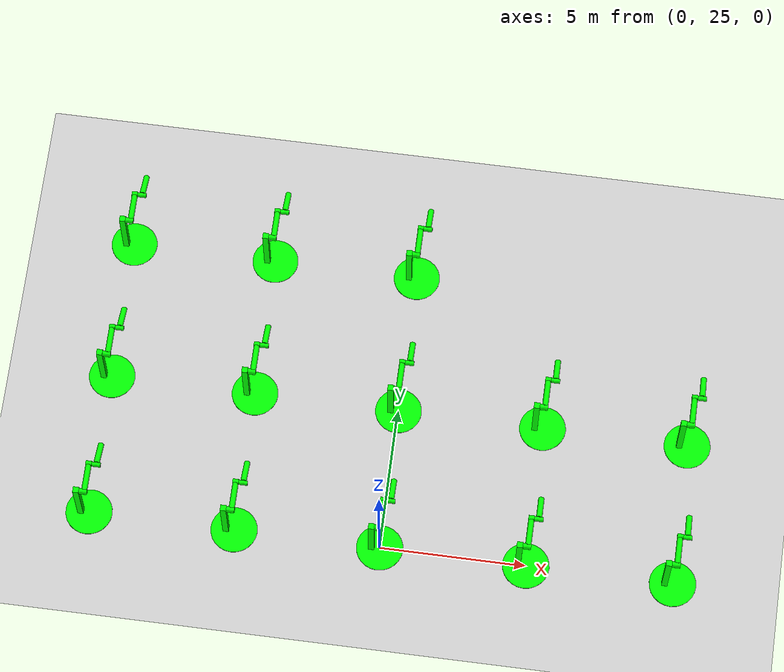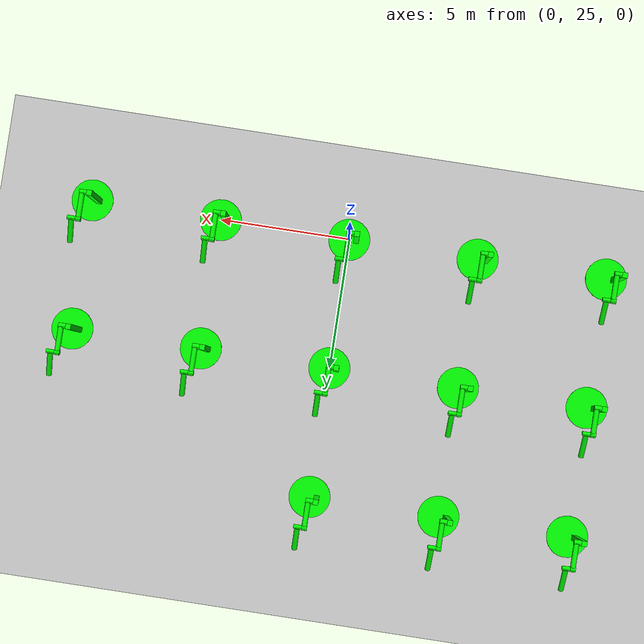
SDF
<sdf version="1.6">
 <world name="double_pendulums">
  <model name="ground_plane">
   <static>true</static>
   <link name="link">
    <collision name="collision">
     <geometry><plane><normal>0 0 1</normal><size>100 100</size></plane></geometry>
    </collision>
    <visual name="visual">
     <geometry><plane><normal>0 0 1</normal><size>100 100</size></plane></geometry>
     <material>
      <ambient>0.8 0.8 0.8 1</ambient>
      <diffuse>0.8 0.8 0.8 1</diffuse>
      <specular>0.8 0.8 0.8 1</specular>
     </material>
    </visual>
   </link>
  </model>
  <model name="dbl_pendulum_125">
   <pose>-10 25 0 0 0 0</pose>
   <link name="base">
    <inertial><mass>100</mass></inertial>
    <visual name="vis_plate_on_ground">
     <pose>0 0 0.01 0 0 0</pose>
     <geometry><cylinder><radius>0.8</radius><length>0.02</length></cylinder></geometry>
     <material><ambient>0 1 0 1</ambient><diffuse>0 1 0 1</diffuse><specular>0 1 0 1</specular></material>
    </visual>
    <visual name="vis_pole">
     <pose>-0.275 0 1.1 0 0 0</pose>
     <geometry><box><size>0.2 0.2 2.2</size></box></geometry>
     <material><ambient>0 1 0 1</ambient><diffuse>0 1 0 1</diffuse><specular>0 1 0 1</specular></material>
    </visual>
    <collision name="col_plate_on_ground">
     <pose>0 0 0.01 0 0 0</pose>
     <geometry><cylinder><radius>0.8</radius><length>0.02</length></cylinder></geometry>
    </collision>
    <collision name="col_pole">
     <pose>-0.275 0 1.1 0 0 0</pose>
     <geometry><box><size>0.2 0.2 2.2</size></box></geometry>
    </collision>
   </link>
   <link name="upper_link">
    <pose>0 0 2.1 -1.5708 0 0</pose>
    <inertial><pose>0 0 0.5 0 0 0</pose></inertial>
    <visual name="vis_upper_joint">
     <pose>-0.05 0 0 0 1.5708 0</pose>
     <geometry><cylinder><radius>0.1</radius><length>0.3</length></cylinder></geometry>
     <material><ambient>0 1 0 1</ambient><diffuse>0 1 0 1</diffuse><specular>0 1 0 1</specular></material>
    </visual>
    <visual name="vis_lower_joint">
     <pose>0 0 1.0 0 1.5708 0</pose>
     <geometry><cylinder><radius>0.1</radius><length>0.2</length></cylinder></geometry>
     <material><ambient>0 1 0 1</ambient><diffuse>0 1 0 1</diffuse><specular>0 1 0 1</specular></material>
    </visual>
    <visual name="vis_cylinder">
     <pose>0 0 0.5 0 0 0</pose>
     <geometry><cylinder><radius>0.1</radius><length>0.9</length></cylinder></geometry>
     <material><ambient>0 1 0 1</ambient><diffuse>0 1 0 1</diffuse><specular>0 1 0 1</specular></material>
    </visual>
    <collision name="col_upper_joint">
     <pose>-0.05 0 0 0 1.5708 0</pose>
     <geometry><cylinder><radius>0.1</radius><length>0.3</length></cylinder></geometry>
    </collision>
    <collision name="col_lower_joint">
     <pose>0 0 1.0 0 1.5708 0</pose>
     <geometry><cylinder><radius>0.1</radius><length>0.2</length></cylinder></geometry>
    </collision>
    <collision name="col_cylinder">
     <pose>0 0 0.5 0 0 0</pose>
     <geometry><cylinder><radius>0.1</radius><length>0.9</length></cylinder></geometry>
    </collision>
   </link>
   <link name="lower_link">
    <pose>0.25 1.0 2.1 -2 0 0</pose>
    <inertial><pose>0 0 0.5 0 0 0</pose></inertial>
    <visual name="vis_lower_joint">
     <pose>0 0 0 0 1.5708 0</pose>
     <geometry><cylinder><radius>0.08</radius><length>0.3</length></cylinder></geometry>
     <material><ambient>0 1 0 1</ambient><diffuse>0 1 0 1</diffuse><specular>0 1 0 1</specular></material>
    </visual>
    <visual name="vis_cylinder">
     <pose>0 0 0.5 0 0 0</pose>
     <geometry><cylinder><radius>0.1</radius><length>0.9</length></cylinder></geometry>
     <material><ambient>0 1 0 1</ambient><diffuse>0 1 0 1</diffuse><specular>0 1 0 1</specular></material>
    </visual>
    <collision name="col_lower_joint">
     <pose>0 0 0 0 1.5708 0</pose>
     <geometry><cylinder><radius>0.08</radius><length>0.3</length></cylinder></geometry>
    </collision>
    <collision name="col_cylinder">
     <pose>0 0 0.5 0 0 0</pose>
     <geometry><cylinder><radius>0.1</radius><length>0.9</length></cylinder></geometry>
    </collision>
   </link>
   <joint name="upper_joint" type="revolute">
    <parent>base</parent>
    <child>upper_link</child>
    <axis><xyz>1.0 0 0</xyz></axis>
   </joint>
   <joint name="lower_joint" type="revolute">
    <parent>upper_link</parent>
    <child>lower_link</child>
    <axis><xyz>1.0 0 0</xyz></axis>
   </joint>
  </model>
  <model name="dbl_pendulum_126">
   <pose>-5 25 0 0 0 0</pose>
   <link name="base">
    <inertial><mass>100</mass></inertial>
    <visual name="vis_plate_on_ground">
     <pose>0 0 0.01 0 0 0</pose>
     <geometry><cylinder><radius>0.8</radius><length>0.02</length></cylinder></geometry>
     <material><ambient>0 1 0 1</ambient><diffuse>0 1 0 1</diffuse><specular>0 1 0 1</specular></material>
    </visual>
    <visual name="vis_pole">
     <pose>-0.275 0 1.1 0 0 0</pose>
     <geometry><box><size>0.2 0.2 2.2</size></box></geometry>
     <material><ambient>0 1 0 1</ambient><diffuse>0 1 0 1</diffuse><specular>0 1 0 1</specular></material>
    </visual>
    <collision name="col_plate_on_ground">
     <pose>0 0 0.01 0 0 0</pose>
     <geometry><cylinder><radius>0.8</radius><length>0.02</length></cylinder></geometry>
    </collision>
    <collision name="col_pole">
     <pose>-0.275 0 1.1 0 0 0</pose>
     <geometry><box><size>0.2 0.2 2.2</size></box></geometry>
    </collision>
   </link>
   <link name="upper_link">
    <pose>0 0 2.1 -1.5708 0 0</pose>
    <inertial><pose>0 0 0.5 0 0 0</pose></inertial>
    <visual name="vis_upper_joint">
     <pose>-0.05 0 0 0 1.5708 0</pose>
     <geometry><cylinder><radius>0.1</radius><length>0.3</length></cylinder></geometry>
     <material><ambient>0 1 0 1</ambient><diffuse>0 1 0 1</diffuse><specular>0 1 0 1</specular></material>
    </visual>
    <visual name="vis_lower_joint">
     <pose>0 0 1.0 0 1.5708 0</pose>
     <geometry><cylinder><radius>0.1</radius><length>0.2</length></cylinder></geometry>
     <material><ambient>0 1 0 1</ambient><diffuse>0 1 0 1</diffuse><specular>0 1 0 1</specular></material>
    </visual>
    <visual name="vis_cylinder">
     <pose>0 0 0.5 0 0 0</pose>
     <geometry><cylinder><radius>0.1</radius><length>0.9</length></cylinder></geometry>
     <material><ambient>0 1 0 1</ambient><diffuse>0 1 0 1</diffuse><specular>0 1 0 1</specular></material>
    </visual>
    <collision name="col_upper_joint">
     <pose>-0.05 0 0 0 1.5708 0</pose>
     <geometry><cylinder><radius>0.1</radius><length>0.3</length></cylinder></geometry>
    </collision>
    <collision name="col_lower_joint">
     <pose>0 0 1.0 0 1.5708 0</pose>
     <geometry><cylinder><radius>0.1</radius><length>0.2</length></cylinder></geometry>
    </collision>
    <collision name="col_cylinder">
     <pose>0 0 0.5 0 0 0</pose>
     <geometry><cylinder><radius>0.1</radius><length>0.9</length></cylinder></geometry>
    </collision>
   </link>
   <link name="lower_link">
    <pose>0.25 1.0 2.1 -2 0 0</pose>
    <inertial><pose>0 0 0.5 0 0 0</pose></inertial>
    <visual name="vis_lower_joint">
     <pose>0 0 0 0 1.5708 0</pose>
     <geometry><cylinder><radius>0.08</radius><length>0.3</length></cylinder></geometry>
     <material><ambient>0 1 0 1</ambient><diffuse>0 1 0 1</diffuse><specular>0 1 0 1</specular></material>
    </visual>
    <visual name="vis_cylinder">
     <pose>0 0 0.5 0 0 0</pose>
     <geometry><cylinder><radius>0.1</radius><length>0.9</length></cylinder></geometry>
     <material><ambient>0 1 0 1</ambient><diffuse>0 1 0 1</diffuse><specular>0 1 0 1</specular></material>
    </visual>
    <collision name="col_lower_joint">
     <pose>0 0 0 0 1.5708 0</pose>
     <geometry><cylinder><radius>0.08</radius><length>0.3</length></cylinder></geometry>
    </collision>
    <collision name="col_cylinder">
     <pose>0 0 0.5 0 0 0</pose>
     <geometry><cylinder><radius>0.1</radius><length>0.9</length></cylinder></geometry>
    </collision>
   </link>
   <joint name="upper_joint" type="revolute">
    <parent>base</parent>
    <child>upper_link</child>
    <axis><xyz>1.0 0 0</xyz></axis>
   </joint>
   <joint name="lower_joint" type="revolute">
    <parent>upper_link</parent>
    <child>lower_link</child>
    <axis><xyz>1.0 0 0</xyz></axis>
   </joint>
  </model>
  <model name="dbl_pendulum_127">
   <pose>0 25 0 0 0 0</pose>
   <link name="base">
    <inertial><mass>100</mass></inertial>
    <visual name="vis_plate_on_ground">
     <pose>0 0 0.01 0 0 0</pose>
     <geometry><cylinder><radius>0.8</radius><length>0.02</length></cylinder></geometry>
     <material><ambient>0 1 0 1</ambient><diffuse>0 1 0 1</diffuse><specular>0 1 0 1</specular></material>
    </visual>
    <visual name="vis_pole">
     <pose>-0.275 0 1.1 0 0 0</pose>
     <geometry><box><size>0.2 0.2 2.2</size></box></geometry>
     <material><ambient>0 1 0 1</ambient><diffuse>0 1 0 1</diffuse><specular>0 1 0 1</specular></material>
    </visual>
    <collision name="col_plate_on_ground">
     <pose>0 0 0.01 0 0 0</pose>
     <geometry><cylinder><radius>0.8</radius><length>0.02</length></cylinder></geometry>
    </collision>
    <collision name="col_pole">
     <pose>-0.275 0 1.1 0 0 0</pose>
     <geometry><box><size>0.2 0.2 2.2</size></box></geometry>
    </collision>
   </link>
   <link name="upper_link">
    <pose>0 0 2.1 -1.5708 0 0</pose>
    <inertial><pose>0 0 0.5 0 0 0</pose></inertial>
    <visual name="vis_upper_joint">
     <pose>-0.05 0 0 0 1.5708 0</pose>
     <geometry><cylinder><radius>0.1</radius><length>0.3</length></cylinder></geometry>
     <material><ambient>0 1 0 1</ambient><diffuse>0 1 0 1</diffuse><specular>0 1 0 1</specular></material>
    </visual>
    <visual name="vis_lower_joint">
     <pose>0 0 1.0 0 1.5708 0</pose>
     <geometry><cylinder><radius>0.1</radius><length>0.2</length></cylinder></geometry>
     <material><ambient>0 1 0 1</ambient><diffuse>0 1 0 1</diffuse><specular>0 1 0 1</specular></material>
    </visual>
    <visual name="vis_cylinder">
     <pose>0 0 0.5 0 0 0</pose>
     <geometry><cylinder><radius>0.1</radius><length>0.9</length></cylinder></geometry>
     <material><ambient>0 1 0 1</ambient><diffuse>0 1 0 1</diffuse><specular>0 1 0 1</specular></material>
    </visual>
    <collision name="col_upper_joint">
     <pose>-0.05 0 0 0 1.5708 0</pose>
     <geometry><cylinder><radius>0.1</radius><length>0.3</length></cylinder></geometry>
    </collision>
    <collision name="col_lower_joint">
     <pose>0 0 1.0 0 1.5708 0</pose>
     <geometry><cylinder><radius>0.1</radius><length>0.2</length></cylinder></geometry>
    </collision>
    <collision name="col_cylinder">
     <pose>0 0 0.5 0 0 0</pose>
     <geometry><cylinder><radius>0.1</radius><length>0.9</length></cylinder></geometry>
    </collision>
   </link>
   <link name="lower_link">
    <pose>0.25 1.0 2.1 -2 0 0</pose>
    <inertial><pose>0 0 0.5 0 0 0</pose></inertial>
    <visual name="vis_lower_joint">
     <pose>0 0 0 0 1.5708 0</pose>
     <geometry><cylinder><radius>0.08</radius><length>0.3</length></cylinder></geometry>
     <material><ambient>0 1 0 1</ambient><diffuse>0 1 0 1</diffuse><specular>0 1 0 1</specular></material>
    </visual>
    <visual name="vis_cylinder">
     <pose>0 0 0.5 0 0 0</pose>
     <geometry><cylinder><radius>0.1</radius><length>0.9</length></cylinder></geometry>
     <material><ambient>0 1 0 1</ambient><diffuse>0 1 0 1</diffuse><specular>0 1 0 1</specular></material>
    </visual>
    <collision name="col_lower_joint">
     <pose>0 0 0 0 1.5708 0</pose>
     <geometry><cylinder><radius>0.08</radius><length>0.3</length></cylinder></geometry>
    </collision>
    <collision name="col_cylinder">
     <pose>0 0 0.5 0 0 0</pose>
     <geometry><cylinder><radius>0.1</radius><length>0.9</length></cylinder></geometry>
    </collision>
   </link>
   <joint name="upper_joint" type="revolute">
    <parent>base</parent>
    <child>upper_link</child>
    <axis><xyz>1.0 0 0</xyz></axis>
   </joint>
   <joint name="lower_joint" type="revolute">
    <parent>upper_link</parent>
    <child>lower_link</child>
    <axis><xyz>1.0 0 0</xyz></axis>
   </joint>
  </model>
  <model name="dbl_pendulum_128">
   <pose>5 25 0 0 0 0</pose>
   <link name="base">
    <inertial><mass>100</mass></inertial>
    <visual name="vis_plate_on_ground">
     <pose>0 0 0.01 0 0 0</pose>
     <geometry><cylinder><radius>0.8</radius><length>0.02</length></cylinder></geometry>
     <material><ambient>0 1 0 1</ambient><diffuse>0 1 0 1</diffuse><specular>0 1 0 1</specular></material>
    </visual>
    <visual name="vis_pole">
     <pose>-0.275 0 1.1 0 0 0</pose>
     <geometry><box><size>0.2 0.2 2.2</size></box></geometry>
     <material><ambient>0 1 0 1</ambient><diffuse>0 1 0 1</diffuse><specular>0 1 0 1</specular></material>
    </visual>
    <collision name="col_plate_on_ground">
     <pose>0 0 0.01 0 0 0</pose>
     <geometry><cylinder><radius>0.8</radius><length>0.02</length></cylinder></geometry>
    </collision>
    <collision name="col_pole">
     <pose>-0.275 0 1.1 0 0 0</pose>
     <geometry><box><size>0.2 0.2 2.2</size></box></geometry>
    </collision>
   </link>
   <link name="upper_link">
    <pose>0 0 2.1 -1.5708 0 0</pose>
    <inertial><pose>0 0 0.5 0 0 0</pose></inertial>
    <visual name="vis_upper_joint">
     <pose>-0.05 0 0 0 1.5708 0</pose>
     <geometry><cylinder><radius>0.1</radius><length>0.3</length></cylinder></geometry>
     <material><ambient>0 1 0 1</ambient><diffuse>0 1 0 1</diffuse><specular>0 1 0 1</specular></material>
    </visual>
    <visual name="vis_lower_joint">
     <pose>0 0 1.0 0 1.5708 0</pose>
     <geometry><cylinder><radius>0.1</radius><length>0.2</length></cylinder></geometry>
     <material><ambient>0 1 0 1</ambient><diffuse>0 1 0 1</diffuse><specular>0 1 0 1</specular></material>
    </visual>
    <visual name="vis_cylinder">
     <pose>0 0 0.5 0 0 0</pose>
     <geometry><cylinder><radius>0.1</radius><length>0.9</length></cylinder></geometry>
     <material><ambient>0 1 0 1</ambient><diffuse>0 1 0 1</diffuse><specular>0 1 0 1</specular></material>
    </visual>
    <collision name="col_upper_joint">
     <pose>-0.05 0 0 0 1.5708 0</pose>
     <geometry><cylinder><radius>0.1</radius><length>0.3</length></cylinder></geometry>
    </collision>
    <collision name="col_lower_joint">
     <pose>0 0 1.0 0 1.5708 0</pose>
     <geometry><cylinder><radius>0.1</radius><length>0.2</length></cylinder></geometry>
    </collision>
    <collision name="col_cylinder">
     <pose>0 0 0.5 0 0 0</pose>
     <geometry><cylinder><radius>0.1</radius><length>0.9</length></cylinder></geometry>
    </collision>
   </link>
   <link name="lower_link">
    <pose>0.25 1.0 2.1 -2 0 0</pose>
    <inertial><pose>0 0 0.5 0 0 0</pose></inertial>
    <visual name="vis_lower_joint">
     <pose>0 0 0 0 1.5708 0</pose>
     <geometry><cylinder><radius>0.08</radius><length>0.3</length></cylinder></geometry>
     <material><ambient>0 1 0 1</ambient><diffuse>0 1 0 1</diffuse><specular>0 1 0 1</specular></material>
    </visual>
    <visual name="vis_cylinder">
     <pose>0 0 0.5 0 0 0</pose>
     <geometry><cylinder><radius>0.1</radius><length>0.9</length></cylinder></geometry>
     <material><ambient>0 1 0 1</ambient><diffuse>0 1 0 1</diffuse><specular>0 1 0 1</specular></material>
    </visual>
    <collision name="col_lower_joint">
     <pose>0 0 0 0 1.5708 0</pose>
     <geometry><cylinder><radius>0.08</radius><length>0.3</length></cylinder></geometry>
    </collision>
    <collision name="col_cylinder">
     <pose>0 0 0.5 0 0 0</pose>
     <geometry><cylinder><radius>0.1</radius><length>0.9</length></cylinder></geometry>
    </collision>
   </link>
   <joint name="upper_joint" type="revolute">
    <parent>base</parent>
    <child>upper_link</child>
    <axis><xyz>1.0 0 0</xyz></axis>
   </joint>
   <joint name="lower_joint" type="revolute">
    <parent>upper_link</parent>
    <child>lower_link</child>
    <axis><xyz>1.0 0 0</xyz></axis>
   </joint>
  </model>
  <model name="dbl_pendulum_129">
   <pose>10 25 0 0 0 0</pose>
   <link name="base">
    <inertial><mass>100</mass></inertial>
    <visual name="vis_plate_on_ground">
     <pose>0 0 0.01 0 0 0</pose>
     <geometry><cylinder><radius>0.8</radius><length>0.02</length></cylinder></geometry>
     <material><ambient>0 1 0 1</ambient><diffuse>0 1 0 1</diffuse><specular>0 1 0 1</specular></material>
    </visual>
    <visual name="vis_pole">
     <pose>-0.275 0 1.1 0 0 0</pose>
     <geometry><box><size>0.2 0.2 2.2</size></box></geometry>
     <material><ambient>0 1 0 1</ambient><diffuse>0 1 0 1</diffuse><specular>0 1 0 1</specular></material>
    </visual>
    <collision name="col_plate_on_ground">
     <pose>0 0 0.01 0 0 0</pose>
     <geometry><cylinder><radius>0.8</radius><length>0.02</length></cylinder></geometry>
    </collision>
    <collision name="col_pole">
     <pose>-0.275 0 1.1 0 0 0</pose>
     <geometry><box><size>0.2 0.2 2.2</size></box></geometry>
    </collision>
   </link>
   <link name="upper_link">
    <pose>0 0 2.1 -1.5708 0 0</pose>
    <inertial><pose>0 0 0.5 0 0 0</pose></inertial>
    <visual name="vis_upper_joint">
     <pose>-0.05 0 0 0 1.5708 0</pose>
     <geometry><cylinder><radius>0.1</radius><length>0.3</length></cylinder></geometry>
     <material><ambient>0 1 0 1</ambient><diffuse>0 1 0 1</diffuse><specular>0 1 0 1</specular></material>
    </visual>
    <visual name="vis_lower_joint">
     <pose>0 0 1.0 0 1.5708 0</pose>
     <geometry><cylinder><radius>0.1</radius><length>0.2</length></cylinder></geometry>
     <material><ambient>0 1 0 1</ambient><diffuse>0 1 0 1</diffuse><specular>0 1 0 1</specular></material>
    </visual>
    <visual name="vis_cylinder">
     <pose>0 0 0.5 0 0 0</pose>
     <geometry><cylinder><radius>0.1</radius><length>0.9</length></cylinder></geometry>
     <material><ambient>0 1 0 1</ambient><diffuse>0 1 0 1</diffuse><specular>0 1 0 1</specular></material>
    </visual>
    <collision name="col_upper_joint">
     <pose>-0.05 0 0 0 1.5708 0</pose>
     <geometry><cylinder><radius>0.1</radius><length>0.3</length></cylinder></geometry>
    </collision>
    <collision name="col_lower_joint">
     <pose>0 0 1.0 0 1.5708 0</pose>
     <geometry><cylinder><radius>0.1</radius><length>0.2</length></cylinder></geometry>
    </collision>
    <collision name="col_cylinder">
     <pose>0 0 0.5 0 0 0</pose>
     <geometry><cylinder><radius>0.1</radius><length>0.9</length></cylinder></geometry>
    </collision>
   </link>
   <link name="lower_link">
    <pose>0.25 1.0 2.1 -2 0 0</pose>
    <inertial><pose>0 0 0.5 0 0 0</pose></inertial>
    <visual name="vis_lower_joint">
     <pose>0 0 0 0 1.5708 0</pose>
     <geometry><cylinder><radius>0.08</radius><length>0.3</length></cylinder></geometry>
     <material><ambient>0 1 0 1</ambient><diffuse>0 1 0 1</diffuse><specular>0 1 0 1</specular></material>
    </visual>
    <visual name="vis_cylinder">
     <pose>0 0 0.5 0 0 0</pose>
     <geometry><cylinder><radius>0.1</radius><length>0.9</length></cylinder></geometry>
     <material><ambient>0 1 0 1</ambient><diffuse>0 1 0 1</diffuse><specular>0 1 0 1</specular></material>
    </visual>
    <collision name="col_lower_joint">
     <pose>0 0 0 0 1.5708 0</pose>
     <geometry><cylinder><radius>0.08</radius><length>0.3</length></cylinder></geometry>
    </collision>
    <collision name="col_cylinder">
     <pose>0 0 0.5 0 0 0</pose>
     <geometry><cylinder><radius>0.1</radius><length>0.9</length></cylinder></geometry>
    </collision>
   </link>
   <joint name="upper_joint" type="revolute">
    <parent>base</parent>
    <child>upper_link</child>
    <axis><xyz>1.0 0 0</xyz></axis>
   </joint>
   <joint name="lower_joint" type="revolute">
    <parent>upper_link</parent>
    <child>lower_link</child>
    <axis><xyz>1.0 0 0</xyz></axis>
   </joint>
  </model>
  <model name="dbl_pendulum_150">
   <pose>-10 30 0 0 0 0</pose>
   <link name="base">
    <inertial><mass>100</mass></inertial>
    <visual name="vis_plate_on_ground">
     <pose>0 0 0.01 0 0 0</pose>
     <geometry><cylinder><radius>0.8</radius><length>0.02</length></cylinder></geometry>
     <material><ambient>0 1 0 1</ambient><diffuse>0 1 0 1</diffuse><specular>0 1 0 1</specular></material>
    </visual>
    <visual name="vis_pole">
     <pose>-0.275 0 1.1 0 0 0</pose>
     <geometry><box><size>0.2 0.2 2.2</size></box></geometry>
     <material><ambient>0 1 0 1</ambient><diffuse>0 1 0 1</diffuse><specular>0 1 0 1</specular></material>
    </visual>
    <collision name="col_plate_on_ground">
     <pose>0 0 0.01 0 0 0</pose>
     <geometry><cylinder><radius>0.8</radius><length>0.02</length></cylinder></geometry>
    </collision>
    <collision name="col_pole">
     <pose>-0.275 0 1.1 0 0 0</pose>
     <geometry><box><size>0.2 0.2 2.2</size></box></geometry>
    </collision>
   </link>
   <link name="upper_link">
    <pose>0 0 2.1 -1.5708 0 0</pose>
    <inertial><pose>0 0 0.5 0 0 0</pose></inertial>
    <visual name="vis_upper_joint">
     <pose>-0.05 0 0 0 1.5708 0</pose>
     <geometry><cylinder><radius>0.1</radius><length>0.3</length></cylinder></geometry>
     <material><ambient>0 1 0 1</ambient><diffuse>0 1 0 1</diffuse><specular>0 1 0 1</specular></material>
    </visual>
    <visual name="vis_lower_joint">
     <pose>0 0 1.0 0 1.5708 0</pose>
     <geometry><cylinder><radius>0.1</radius><length>0.2</length></cylinder></geometry>
     <material><ambient>0 1 0 1</ambient><diffuse>0 1 0 1</diffuse><specular>0 1 0 1</specular></material>
    </visual>
    <visual name="vis_cylinder">
     <pose>0 0 0.5 0 0 0</pose>
     <geometry><cylinder><radius>0.1</radius><length>0.9</length></cylinder></geometry>
     <material><ambient>0 1 0 1</ambient><diffuse>0 1 0 1</diffuse><specular>0 1 0 1</specular></material>
    </visual>
    <collision name="col_upper_joint">
     <pose>-0.05 0 0 0 1.5708 0</pose>
     <geometry><cylinder><radius>0.1</radius><length>0.3</length></cylinder></geometry>
    </collision>
    <collision name="col_lower_joint">
     <pose>0 0 1.0 0 1.5708 0</pose>
     <geometry><cylinder><radius>0.1</radius><length>0.2</length></cylinder></geometry>
    </collision>
    <collision name="col_cylinder">
     <pose>0 0 0.5 0 0 0</pose>
     <geometry><cylinder><radius>0.1</radius><length>0.9</length></cylinder></geometry>
    </collision>
   </link>
   <link name="lower_link">
    <pose>0.25 1.0 2.1 -2 0 0</pose>
    <inertial><pose>0 0 0.5 0 0 0</pose></inertial>
    <visual name="vis_lower_joint">
     <pose>0 0 0 0 1.5708 0</pose>
     <geometry><cylinder><radius>0.08</radius><length>0.3</length></cylinder></geometry>
     <material><ambient>0 1 0 1</ambient><diffuse>0 1 0 1</diffuse><specular>0 1 0 1</specular></material>
    </visual>
    <visual name="vis_cylinder">
     <pose>0 0 0.5 0 0 0</pose>
     <geometry><cylinder><radius>0.1</radius><length>0.9</length></cylinder></geometry>
     <material><ambient>0 1 0 1</ambient><diffuse>0 1 0 1</diffuse><specular>0 1 0 1</specular></material>
    </visual>
    <collision name="col_lower_joint">
     <pose>0 0 0 0 1.5708 0</pose>
     <geometry><cylinder><radius>0.08</radius><length>0.3</length></cylinder></geometry>
    </collision>
    <collision name="col_cylinder">
     <pose>0 0 0.5 0 0 0</pose>
     <geometry><cylinder><radius>0.1</radius><length>0.9</length></cylinder></geometry>
    </collision>
   </link>
   <joint name="upper_joint" type="revolute">
    <parent>base</parent>
    <child>upper_link</child>
    <axis><xyz>1.0 0 0</xyz></axis>
   </joint>
   <joint name="lower_joint" type="revolute">
    <parent>upper_link</parent>
    <child>lower_link</child>
    <axis><xyz>1.0 0 0</xyz></axis>
   </joint>
  </model>
  <model name="dbl_pendulum_151">
   <pose>-5 30 0 0 0 0</pose>
   <link name="base">
    <inertial><mass>100</mass></inertial>
    <visual name="vis_plate_on_ground">
     <pose>0 0 0.01 0 0 0</pose>
     <geometry><cylinder><radius>0.8</radius><length>0.02</length></cylinder></geometry>
     <material><ambient>0 1 0 1</ambient><diffuse>0 1 0 1</diffuse><specular>0 1 0 1</specular></material>
    </visual>
    <visual name="vis_pole">
     <pose>-0.275 0 1.1 0 0 0</pose>
     <geometry><box><size>0.2 0.2 2.2</size></box></geometry>
     <material><ambient>0 1 0 1</ambient><diffuse>0 1 0 1</diffuse><specular>0 1 0 1</specular></material>
    </visual>
    <collision name="col_plate_on_ground">
     <pose>0 0 0.01 0 0 0</pose>
     <geometry><cylinder><radius>0.8</radius><length>0.02</length></cylinder></geometry>
    </collision>
    <collision name="col_pole">
     <pose>-0.275 0 1.1 0 0 0</pose>
     <geometry><box><size>0.2 0.2 2.2</size></box></geometry>
    </collision>
   </link>
   <link name="upper_link">
    <pose>0 0 2.1 -1.5708 0 0</pose>
    <inertial><pose>0 0 0.5 0 0 0</pose></inertial>
    <visual name="vis_upper_joint">
     <pose>-0.05 0 0 0 1.5708 0</pose>
     <geometry><cylinder><radius>0.1</radius><length>0.3</length></cylinder></geometry>
     <material><ambient>0 1 0 1</ambient><diffuse>0 1 0 1</diffuse><specular>0 1 0 1</specular></material>
    </visual>
    <visual name="vis_lower_joint">
     <pose>0 0 1.0 0 1.5708 0</pose>
     <geometry><cylinder><radius>0.1</radius><length>0.2</length></cylinder></geometry>
     <material><ambient>0 1 0 1</ambient><diffuse>0 1 0 1</diffuse><specular>0 1 0 1</specular></material>
    </visual>
    <visual name="vis_cylinder">
     <pose>0 0 0.5 0 0 0</pose>
     <geometry><cylinder><radius>0.1</radius><length>0.9</length></cylinder></geometry>
     <material><ambient>0 1 0 1</ambient><diffuse>0 1 0 1</diffuse><specular>0 1 0 1</specular></material>
    </visual>
    <collision name="col_upper_joint">
     <pose>-0.05 0 0 0 1.5708 0</pose>
     <geometry><cylinder><radius>0.1</radius><length>0.3</length></cylinder></geometry>
    </collision>
    <collision name="col_lower_joint">
     <pose>0 0 1.0 0 1.5708 0</pose>
     <geometry><cylinder><radius>0.1</radius><length>0.2</length></cylinder></geometry>
    </collision>
    <collision name="col_cylinder">
     <pose>0 0 0.5 0 0 0</pose>
     <geometry><cylinder><radius>0.1</radius><length>0.9</length></cylinder></geometry>
    </collision>
   </link>
   <link name="lower_link">
    <pose>0.25 1.0 2.1 -2 0 0</pose>
    <inertial><pose>0 0 0.5 0 0 0</pose></inertial>
    <visual name="vis_lower_joint">
     <pose>0 0 0 0 1.5708 0</pose>
     <geometry><cylinder><radius>0.08</radius><length>0.3</length></cylinder></geometry>
     <material><ambient>0 1 0 1</ambient><diffuse>0 1 0 1</diffuse><specular>0 1 0 1</specular></material>
    </visual>
    <visual name="vis_cylinder">
     <pose>0 0 0.5 0 0 0</pose>
     <geometry><cylinder><radius>0.1</radius><length>0.9</length></cylinder></geometry>
     <material><ambient>0 1 0 1</ambient><diffuse>0 1 0 1</diffuse><specular>0 1 0 1</specular></material>
    </visual>
    <collision name="col_lower_joint">
     <pose>0 0 0 0 1.5708 0</pose>
     <geometry><cylinder><radius>0.08</radius><length>0.3</length></cylinder></geometry>
    </collision>
    <collision name="col_cylinder">
     <pose>0 0 0.5 0 0 0</pose>
     <geometry><cylinder><radius>0.1</radius><length>0.9</length></cylinder></geometry>
    </collision>
   </link>
   <joint name="upper_joint" type="revolute">
    <parent>base</parent>
    <child>upper_link</child>
    <axis><xyz>1.0 0 0</xyz></axis>
   </joint>
   <joint name="lower_joint" type="revolute">
    <parent>upper_link</parent>
    <child>lower_link</child>
    <axis><xyz>1.0 0 0</xyz></axis>
   </joint>
  </model>
  <model name="dbl_pendulum_152">
   <pose>0 30 0 0 0 0</pose>
   <link name="base">
    <inertial><mass>100</mass></inertial>
    <visual name="vis_plate_on_ground">
     <pose>0 0 0.01 0 0 0</pose>
     <geometry><cylinder><radius>0.8</radius><length>0.02</length></cylinder></geometry>
     <material><ambient>0 1 0 1</ambient><diffuse>0 1 0 1</diffuse><specular>0 1 0 1</specular></material>
    </visual>
    <visual name="vis_pole">
     <pose>-0.275 0 1.1 0 0 0</pose>
     <geometry><box><size>0.2 0.2 2.2</size></box></geometry>
     <material><ambient>0 1 0 1</ambient><diffuse>0 1 0 1</diffuse><specular>0 1 0 1</specular></material>
    </visual>
    <collision name="col_plate_on_ground">
     <pose>0 0 0.01 0 0 0</pose>
     <geometry><cylinder><radius>0.8</radius><length>0.02</length></cylinder></geometry>
    </collision>
    <collision name="col_pole">
     <pose>-0.275 0 1.1 0 0 0</pose>
     <geometry><box><size>0.2 0.2 2.2</size></box></geometry>
    </collision>
   </link>
   <link name="upper_link">
    <pose>0 0 2.1 -1.5708 0 0</pose>
    <inertial><pose>0 0 0.5 0 0 0</pose></inertial>
    <visual name="vis_upper_joint">
     <pose>-0.05 0 0 0 1.5708 0</pose>
     <geometry><cylinder><radius>0.1</radius><length>0.3</length></cylinder></geometry>
     <material><ambient>0 1 0 1</ambient><diffuse>0 1 0 1</diffuse><specular>0 1 0 1</specular></material>
    </visual>
    <visual name="vis_lower_joint">
     <pose>0 0 1.0 0 1.5708 0</pose>
     <geometry><cylinder><radius>0.1</radius><length>0.2</length></cylinder></geometry>
     <material><ambient>0 1 0 1</ambient><diffuse>0 1 0 1</diffuse><specular>0 1 0 1</specular></material>
    </visual>
    <visual name="vis_cylinder">
     <pose>0 0 0.5 0 0 0</pose>
     <geometry><cylinder><radius>0.1</radius><length>0.9</length></cylinder></geometry>
     <material><ambient>0 1 0 1</ambient><diffuse>0 1 0 1</diffuse><specular>0 1 0 1</specular></material>
    </visual>
    <collision name="col_upper_joint">
     <pose>-0.05 0 0 0 1.5708 0</pose>
     <geometry><cylinder><radius>0.1</radius><length>0.3</length></cylinder></geometry>
    </collision>
    <collision name="col_lower_joint">
     <pose>0 0 1.0 0 1.5708 0</pose>
     <geometry><cylinder><radius>0.1</radius><length>0.2</length></cylinder></geometry>
    </collision>
    <collision name="col_cylinder">
     <pose>0 0 0.5 0 0 0</pose>
     <geometry><cylinder><radius>0.1</radius><length>0.9</length></cylinder></geometry>
    </collision>
   </link>
   <link name="lower_link">
    <pose>0.25 1.0 2.1 -2 0 0</pose>
    <inertial><pose>0 0 0.5 0 0 0</pose></inertial>
    <visual name="vis_lower_joint">
     <pose>0 0 0 0 1.5708 0</pose>
     <geometry><cylinder><radius>0.08</radius><length>0.3</length></cylinder></geometry>
     <material><ambient>0 1 0 1</ambient><diffuse>0 1 0 1</diffuse><specular>0 1 0 1</specular></material>
    </visual>
    <visual name="vis_cylinder">
     <pose>0 0 0.5 0 0 0</pose>
     <geometry><cylinder><radius>0.1</radius><length>0.9</length></cylinder></geometry>
     <material><ambient>0 1 0 1</ambient><diffuse>0 1 0 1</diffuse><specular>0 1 0 1</specular></material>
    </visual>
    <collision name="col_lower_joint">
     <pose>0 0 0 0 1.5708 0</pose>
     <geometry><cylinder><radius>0.08</radius><length>0.3</length></cylinder></geometry>
    </collision>
    <collision name="col_cylinder">
     <pose>0 0 0.5 0 0 0</pose>
     <geometry><cylinder><radius>0.1</radius><length>0.9</length></cylinder></geometry>
    </collision>
   </link>
   <joint name="upper_joint" type="revolute">
    <parent>base</parent>
    <child>upper_link</child>
    <axis><xyz>1.0 0 0</xyz></axis>
   </joint>
   <joint name="lower_joint" type="revolute">
    <parent>upper_link</parent>
    <child>lower_link</child>
    <axis><xyz>1.0 0 0</xyz></axis>
   </joint>
  </model>
  <model name="dbl_pendulum_153">
   <pose>5 30 0 0 0 0</pose>
   <link name="base">
    <inertial><mass>100</mass></inertial>
    <visual name="vis_plate_on_ground">
     <pose>0 0 0.01 0 0 0</pose>
     <geometry><cylinder><radius>0.8</radius><length>0.02</length></cylinder></geometry>
     <material><ambient>0 1 0 1</ambient><diffuse>0 1 0 1</diffuse><specular>0 1 0 1</specular></material>
    </visual>
    <visual name="vis_pole">
     <pose>-0.275 0 1.1 0 0 0</pose>
     <geometry><box><size>0.2 0.2 2.2</size></box></geometry>
     <material><ambient>0 1 0 1</ambient><diffuse>0 1 0 1</diffuse><specular>0 1 0 1</specular></material>
    </visual>
    <collision name="col_plate_on_ground">
     <pose>0 0 0.01 0 0 0</pose>
     <geometry><cylinder><radius>0.8</radius><length>0.02</length></cylinder></geometry>
    </collision>
    <collision name="col_pole">
     <pose>-0.275 0 1.1 0 0 0</pose>
     <geometry><box><size>0.2 0.2 2.2</size></box></geometry>
    </collision>
   </link>
   <link name="upper_link">
    <pose>0 0 2.1 -1.5708 0 0</pose>
    <inertial><pose>0 0 0.5 0 0 0</pose></inertial>
    <visual name="vis_upper_joint">
     <pose>-0.05 0 0 0 1.5708 0</pose>
     <geometry><cylinder><radius>0.1</radius><length>0.3</length></cylinder></geometry>
     <material><ambient>0 1 0 1</ambient><diffuse>0 1 0 1</diffuse><specular>0 1 0 1</specular></material>
    </visual>
    <visual name="vis_lower_joint">
     <pose>0 0 1.0 0 1.5708 0</pose>
     <geometry><cylinder><radius>0.1</radius><length>0.2</length></cylinder></geometry>
     <material><ambient>0 1 0 1</ambient><diffuse>0 1 0 1</diffuse><specular>0 1 0 1</specular></material>
    </visual>
    <visual name="vis_cylinder">
     <pose>0 0 0.5 0 0 0</pose>
     <geometry><cylinder><radius>0.1</radius><length>0.9</length></cylinder></geometry>
     <material><ambient>0 1 0 1</ambient><diffuse>0 1 0 1</diffuse><specular>0 1 0 1</specular></material>
    </visual>
    <collision name="col_upper_joint">
     <pose>-0.05 0 0 0 1.5708 0</pose>
     <geometry><cylinder><radius>0.1</radius><length>0.3</length></cylinder></geometry>
    </collision>
    <collision name="col_lower_joint">
     <pose>0 0 1.0 0 1.5708 0</pose>
     <geometry><cylinder><radius>0.1</radius><length>0.2</length></cylinder></geometry>
    </collision>
    <collision name="col_cylinder">
     <pose>0 0 0.5 0 0 0</pose>
     <geometry><cylinder><radius>0.1</radius><length>0.9</length></cylinder></geometry>
    </collision>
   </link>
   <link name="lower_link">
    <pose>0.25 1.0 2.1 -2 0 0</pose>
    <inertial><pose>0 0 0.5 0 0 0</pose></inertial>
    <visual name="vis_lower_joint">
     <pose>0 0 0 0 1.5708 0</pose>
     <geometry><cylinder><radius>0.08</radius><length>0.3</length></cylinder></geometry>
     <material><ambient>0 1 0 1</ambient><diffuse>0 1 0 1</diffuse><specular>0 1 0 1</specular></material>
    </visual>
    <visual name="vis_cylinder">
     <pose>0 0 0.5 0 0 0</pose>
     <geometry><cylinder><radius>0.1</radius><length>0.9</length></cylinder></geometry>
     <material><ambient>0 1 0 1</ambient><diffuse>0 1 0 1</diffuse><specular>0 1 0 1</specular></material>
    </visual>
    <collision name="col_lower_joint">
     <pose>0 0 0 0 1.5708 0</pose>
     <geometry><cylinder><radius>0.08</radius><length>0.3</length></cylinder></geometry>
    </collision>
    <collision name="col_cylinder">
     <pose>0 0 0.5 0 0 0</pose>
     <geometry><cylinder><radius>0.1</radius><length>0.9</length></cylinder></geometry>
    </collision>
   </link>
   <joint name="upper_joint" type="revolute">
    <parent>base</parent>
    <child>upper_link</child>
    <axis><xyz>1.0 0 0</xyz></axis>
   </joint>
   <joint name="lower_joint" type="revolute">
    <parent>upper_link</parent>
    <child>lower_link</child>
    <axis><xyz>1.0 0 0</xyz></axis>
   </joint>
  </model>
  <model name="dbl_pendulum_154">
   <pose>10 30 0 0 0 0</pose>
   <link name="base">
    <inertial><mass>100</mass></inertial>
    <visual name="vis_plate_on_ground">
     <pose>0 0 0.01 0 0 0</pose>
     <geometry><cylinder><radius>0.8</radius><length>0.02</length></cylinder></geometry>
     <material><ambient>0 1 0 1</ambient><diffuse>0 1 0 1</diffuse><specular>0 1 0 1</specular></material>
    </visual>
    <visual name="vis_pole">
     <pose>-0.275 0 1.1 0 0 0</pose>
     <geometry><box><size>0.2 0.2 2.2</size></box></geometry>
     <material><ambient>0 1 0 1</ambient><diffuse>0 1 0 1</diffuse><specular>0 1 0 1</specular></material>
    </visual>
    <collision name="col_plate_on_ground">
     <pose>0 0 0.01 0 0 0</pose>
     <geometry><cylinder><radius>0.8</radius><length>0.02</length></cylinder></geometry>
    </collision>
    <collision name="col_pole">
     <pose>-0.275 0 1.1 0 0 0</pose>
     <geometry><box><size>0.2 0.2 2.2</size></box></geometry>
    </collision>
   </link>
   <link name="upper_link">
    <pose>0 0 2.1 -1.5708 0 0</pose>
    <inertial><pose>0 0 0.5 0 0 0</pose></inertial>
    <visual name="vis_upper_joint">
     <pose>-0.05 0 0 0 1.5708 0</pose>
     <geometry><cylinder><radius>0.1</radius><length>0.3</length></cylinder></geometry>
     <material><ambient>0 1 0 1</ambient><diffuse>0 1 0 1</diffuse><specular>0 1 0 1</specular></material>
    </visual>
    <visual name="vis_lower_joint">
     <pose>0 0 1.0 0 1.5708 0</pose>
     <geometry><cylinder><radius>0.1</radius><length>0.2</length></cylinder></geometry>
     <material><ambient>0 1 0 1</ambient><diffuse>0 1 0 1</diffuse><specular>0 1 0 1</specular></material>
    </visual>
    <visual name="vis_cylinder">
     <pose>0 0 0.5 0 0 0</pose>
     <geometry><cylinder><radius>0.1</radius><length>0.9</length></cylinder></geometry>
     <material><ambient>0 1 0 1</ambient><diffuse>0 1 0 1</diffuse><specular>0 1 0 1</specular></material>
    </visual>
    <collision name="col_upper_joint">
     <pose>-0.05 0 0 0 1.5708 0</pose>
     <geometry><cylinder><radius>0.1</radius><length>0.3</length></cylinder></geometry>
    </collision>
    <collision name="col_lower_joint">
     <pose>0 0 1.0 0 1.5708 0</pose>
     <geometry><cylinder><radius>0.1</radius><length>0.2</length></cylinder></geometry>
    </collision>
    <collision name="col_cylinder">
     <pose>0 0 0.5 0 0 0</pose>
     <geometry><cylinder><radius>0.1</radius><length>0.9</length></cylinder></geometry>
    </collision>
   </link>
   <link name="lower_link">
    <pose>0.25 1.0 2.1 -2 0 0</pose>
    <inertial><pose>0 0 0.5 0 0 0</pose></inertial>
    <visual name="vis_lower_joint">
     <pose>0 0 0 0 1.5708 0</pose>
     <geometry><cylinder><radius>0.08</radius><length>0.3</length></cylinder></geometry>
     <material><ambient>0 1 0 1</ambient><diffuse>0 1 0 1</diffuse><specular>0 1 0 1</specular></material>
    </visual>
    <visual name="vis_cylinder">
     <pose>0 0 0.5 0 0 0</pose>
     <geometry><cylinder><radius>0.1</radius><length>0.9</length></cylinder></geometry>
     <material><ambient>0 1 0 1</ambient><diffuse>0 1 0 1</diffuse><specular>0 1 0 1</specular></material>
    </visual>
    <collision name="col_lower_joint">
     <pose>0 0 0 0 1.5708 0</pose>
     <geometry><cylinder><radius>0.08</radius><length>0.3</length></cylinder></geometry>
    </collision>
    <collision name="col_cylinder">
     <pose>0 0 0.5 0 0 0</pose>
     <geometry><cylinder><radius>0.1</radius><length>0.9</length></cylinder></geometry>
    </collision>
   </link>
   <joint name="upper_joint" type="revolute">
    <parent>base</parent>
    <child>upper_link</child>
    <axis><xyz>1.0 0 0</xyz></axis>
   </joint>
   <joint name="lower_joint" type="revolute">
    <parent>upper_link</parent>
    <child>lower_link</child>
    <axis><xyz>1.0 0 0</xyz></axis>
   </joint>
  </model>
  <model name="dbl_pendulum_175">
   <pose>-10 35 0 0 0 0</pose>
   <link name="base">
    <inertial><mass>100</mass></inertial>
    <visual name="vis_plate_on_ground">
     <pose>0 0 0.01 0 0 0</pose>
     <geometry><cylinder><radius>0.8</radius><length>0.02</length></cylinder></geometry>
     <material><ambient>0 1 0 1</ambient><diffuse>0 1 0 1</diffuse><specular>0 1 0 1</specular></material>
    </visual>
    <visual name="vis_pole">
     <pose>-0.275 0 1.1 0 0 0</pose>
     <geometry><box><size>0.2 0.2 2.2</size></box></geometry>
     <material><ambient>0 1 0 1</ambient><diffuse>0 1 0 1</diffuse><specular>0 1 0 1</specular></material>
    </visual>
    <collision name="col_plate_on_ground">
     <pose>0 0 0.01 0 0 0</pose>
     <geometry><cylinder><radius>0.8</radius><length>0.02</length></cylinder></geometry>
    </collision>
    <collision name="col_pole">
     <pose>-0.275 0 1.1 0 0 0</pose>
     <geometry><box><size>0.2 0.2 2.2</size></box></geometry>
    </collision>
   </link>
   <link name="upper_link">
    <pose>0 0 2.1 -1.5708 0 0</pose>
    <inertial><pose>0 0 0.5 0 0 0</pose></inertial>
    <visual name="vis_upper_joint">
     <pose>-0.05 0 0 0 1.5708 0</pose>
     <geometry><cylinder><radius>0.1</radius><length>0.3</length></cylinder></geometry>
     <material><ambient>0 1 0 1</ambient><diffuse>0 1 0 1</diffuse><specular>0 1 0 1</specular></material>
    </visual>
    <visual name="vis_lower_joint">
     <pose>0 0 1.0 0 1.5708 0</pose>
     <geometry><cylinder><radius>0.1</radius><length>0.2</length></cylinder></geometry>
     <material><ambient>0 1 0 1</ambient><diffuse>0 1 0 1</diffuse><specular>0 1 0 1</specular></material>
    </visual>
    <visual name="vis_cylinder">
     <pose>0 0 0.5 0 0 0</pose>
     <geometry><cylinder><radius>0.1</radius><length>0.9</length></cylinder></geometry>
     <material><ambient>0 1 0 1</ambient><diffuse>0 1 0 1</diffuse><specular>0 1 0 1</specular></material>
    </visual>
    <collision name="col_upper_joint">
     <pose>-0.05 0 0 0 1.5708 0</pose>
     <geometry><cylinder><radius>0.1</radius><length>0.3</length></cylinder></geometry>
    </collision>
    <collision name="col_lower_joint">
     <pose>0 0 1.0 0 1.5708 0</pose>
     <geometry><cylinder><radius>0.1</radius><length>0.2</length></cylinder></geometry>
    </collision>
    <collision name="col_cylinder">
     <pose>0 0 0.5 0 0 0</pose>
     <geometry><cylinder><radius>0.1</radius><length>0.9</length></cylinder></geometry>
    </collision>
   </link>
   <link name="lower_link">
    <pose>0.25 1.0 2.1 -2 0 0</pose>
    <inertial><pose>0 0 0.5 0 0 0</pose></inertial>
    <visual name="vis_lower_joint">
     <pose>0 0 0 0 1.5708 0</pose>
     <geometry><cylinder><radius>0.08</radius><length>0.3</length></cylinder></geometry>
     <material><ambient>0 1 0 1</ambient><diffuse>0 1 0 1</diffuse><specular>0 1 0 1</specular></material>
    </visual>
    <visual name="vis_cylinder">
     <pose>0 0 0.5 0 0 0</pose>
     <geometry><cylinder><radius>0.1</radius><length>0.9</length></cylinder></geometry>
     <material><ambient>0 1 0 1</ambient><diffuse>0 1 0 1</diffuse><specular>0 1 0 1</specular></material>
    </visual>
    <collision name="col_lower_joint">
     <pose>0 0 0 0 1.5708 0</pose>
     <geometry><cylinder><radius>0.08</radius><length>0.3</length></cylinder></geometry>
    </collision>
    <collision name="col_cylinder">
     <pose>0 0 0.5 0 0 0</pose>
     <geometry><cylinder><radius>0.1</radius><length>0.9</length></cylinder></geometry>
    </collision>
   </link>
   <joint name="upper_joint" type="revolute">
    <parent>base</parent>
    <child>upper_link</child>
    <axis><xyz>1.0 0 0</xyz></axis>
   </joint>
   <joint name="lower_joint" type="revolute">
    <parent>upper_link</parent>
    <child>lower_link</child>
    <axis><xyz>1.0 0 0</xyz></axis>
   </joint>
  </model>
  <model name="dbl_pendulum_176">
   <pose>-5 35 0 0 0 0</pose>
   <link name="base">
    <inertial><mass>100</mass></inertial>
    <visual name="vis_plate_on_ground">
     <pose>0 0 0.01 0 0 0</pose>
     <geometry><cylinder><radius>0.8</radius><length>0.02</length></cylinder></geometry>
     <material><ambient>0 1 0 1</ambient><diffuse>0 1 0 1</diffuse><specular>0 1 0 1</specular></material>
    </visual>
    <visual name="vis_pole">
     <pose>-0.275 0 1.1 0 0 0</pose>
     <geometry><box><size>0.2 0.2 2.2</size></box></geometry>
     <material><ambient>0 1 0 1</ambient><diffuse>0 1 0 1</diffuse><specular>0 1 0 1</specular></material>
    </visual>
    <collision name="col_plate_on_ground">
     <pose>0 0 0.01 0 0 0</pose>
     <geometry><cylinder><radius>0.8</radius><length>0.02</length></cylinder></geometry>
    </collision>
    <collision name="col_pole">
     <pose>-0.275 0 1.1 0 0 0</pose>
     <geometry><box><size>0.2 0.2 2.2</size></box></geometry>
    </collision>
   </link>
   <link name="upper_link">
    <pose>0 0 2.1 -1.5708 0 0</pose>
    <inertial><pose>0 0 0.5 0 0 0</pose></inertial>
    <visual name="vis_upper_joint">
     <pose>-0.05 0 0 0 1.5708 0</pose>
     <geometry><cylinder><radius>0.1</radius><length>0.3</length></cylinder></geometry>
     <material><ambient>0 1 0 1</ambient><diffuse>0 1 0 1</diffuse><specular>0 1 0 1</specular></material>
    </visual>
    <visual name="vis_lower_joint">
     <pose>0 0 1.0 0 1.5708 0</pose>
     <geometry><cylinder><radius>0.1</radius><length>0.2</length></cylinder></geometry>
     <material><ambient>0 1 0 1</ambient><diffuse>0 1 0 1</diffuse><specular>0 1 0 1</specular></material>
    </visual>
    <visual name="vis_cylinder">
     <pose>0 0 0.5 0 0 0</pose>
     <geometry><cylinder><radius>0.1</radius><length>0.9</length></cylinder></geometry>
     <material><ambient>0 1 0 1</ambient><diffuse>0 1 0 1</diffuse><specular>0 1 0 1</specular></material>
    </visual>
    <collision name="col_upper_joint">
     <pose>-0.05 0 0 0 1.5708 0</pose>
     <geometry><cylinder><radius>0.1</radius><length>0.3</length></cylinder></geometry>
    </collision>
    <collision name="col_lower_joint">
     <pose>0 0 1.0 0 1.5708 0</pose>
     <geometry><cylinder><radius>0.1</radius><length>0.2</length></cylinder></geometry>
    </collision>
    <collision name="col_cylinder">
     <pose>0 0 0.5 0 0 0</pose>
     <geometry><cylinder><radius>0.1</radius><length>0.9</length></cylinder></geometry>
    </collision>
   </link>
   <link name="lower_link">
    <pose>0.25 1.0 2.1 -2 0 0</pose>
    <inertial><pose>0 0 0.5 0 0 0</pose></inertial>
    <visual name="vis_lower_joint">
     <pose>0 0 0 0 1.5708 0</pose>
     <geometry><cylinder><radius>0.08</radius><length>0.3</length></cylinder></geometry>
     <material><ambient>0 1 0 1</ambient><diffuse>0 1 0 1</diffuse><specular>0 1 0 1</specular></material>
    </visual>
    <visual name="vis_cylinder">
     <pose>0 0 0.5 0 0 0</pose>
     <geometry><cylinder><radius>0.1</radius><length>0.9</length></cylinder></geometry>
     <material><ambient>0 1 0 1</ambient><diffuse>0 1 0 1</diffuse><specular>0 1 0 1</specular></material>
    </visual>
    <collision name="col_lower_joint">
     <pose>0 0 0 0 1.5708 0</pose>
     <geometry><cylinder><radius>0.08</radius><length>0.3</length></cylinder></geometry>
    </collision>
    <collision name="col_cylinder">
     <pose>0 0 0.5 0 0 0</pose>
     <geometry><cylinder><radius>0.1</radius><length>0.9</length></cylinder></geometry>
    </collision>
   </link>
   <joint name="upper_joint" type="revolute">
    <parent>base</parent>
    <child>upper_link</child>
    <axis><xyz>1.0 0 0</xyz></axis>
   </joint>
   <joint name="lower_joint" type="revolute">
    <parent>upper_link</parent>
    <child>lower_link</child>
    <axis><xyz>1.0 0 0</xyz></axis>
   </joint>
  </model>
  <model name="dbl_pendulum_177">
   <pose>0 35 0 0 0 0</pose>
   <link name="base">
    <inertial><mass>100</mass></inertial>
    <visual name="vis_plate_on_ground">
     <pose>0 0 0.01 0 0 0</pose>
     <geometry><cylinder><radius>0.8</radius><length>0.02</length></cylinder></geometry>
     <material><ambient>0 1 0 1</ambient><diffuse>0 1 0 1</diffuse><specular>0 1 0 1</specular></material>
    </visual>
    <visual name="vis_pole">
     <pose>-0.275 0 1.1 0 0 0</pose>
     <geometry><box><size>0.2 0.2 2.2</size></box></geometry>
     <material><ambient>0 1 0 1</ambient><diffuse>0 1 0 1</diffuse><specular>0 1 0 1</specular></material>
    </visual>
    <collision name="col_plate_on_ground">
     <pose>0 0 0.01 0 0 0</pose>
     <geometry><cylinder><radius>0.8</radius><length>0.02</length></cylinder></geometry>
    </collision>
    <collision name="col_pole">
     <pose>-0.275 0 1.1 0 0 0</pose>
     <geometry><box><size>0.2 0.2 2.2</size></box></geometry>
    </collision>
   </link>
   <link name="upper_link">
    <pose>0 0 2.1 -1.5708 0 0</pose>
    <inertial><pose>0 0 0.5 0 0 0</pose></inertial>
    <visual name="vis_upper_joint">
     <pose>-0.05 0 0 0 1.5708 0</pose>
     <geometry><cylinder><radius>0.1</radius><length>0.3</length></cylinder></geometry>
     <material><ambient>0 1 0 1</ambient><diffuse>0 1 0 1</diffuse><specular>0 1 0 1</specular></material>
    </visual>
    <visual name="vis_lower_joint">
     <pose>0 0 1.0 0 1.5708 0</pose>
     <geometry><cylinder><radius>0.1</radius><length>0.2</length></cylinder></geometry>
     <material><ambient>0 1 0 1</ambient><diffuse>0 1 0 1</diffuse><specular>0 1 0 1</specular></material>
    </visual>
    <visual name="vis_cylinder">
     <pose>0 0 0.5 0 0 0</pose>
     <geometry><cylinder><radius>0.1</radius><length>0.9</length></cylinder></geometry>
     <material><ambient>0 1 0 1</ambient><diffuse>0 1 0 1</diffuse><specular>0 1 0 1</specular></material>
    </visual>
    <collision name="col_upper_joint">
     <pose>-0.05 0 0 0 1.5708 0</pose>
     <geometry><cylinder><radius>0.1</radius><length>0.3</length></cylinder></geometry>
    </collision>
    <collision name="col_lower_joint">
     <pose>0 0 1.0 0 1.5708 0</pose>
     <geometry><cylinder><radius>0.1</radius><length>0.2</length></cylinder></geometry>
    </collision>
    <collision name="col_cylinder">
     <pose>0 0 0.5 0 0 0</pose>
     <geometry><cylinder><radius>0.1</radius><length>0.9</length></cylinder></geometry>
    </collision>
   </link>
   <link name="lower_link">
    <pose>0.25 1.0 2.1 -2 0 0</pose>
    <inertial><pose>0 0 0.5 0 0 0</pose></inertial>
    <visual name="vis_lower_joint">
     <pose>0 0 0 0 1.5708 0</pose>
     <geometry><cylinder><radius>0.08</radius><length>0.3</length></cylinder></geometry>
     <material><ambient>0 1 0 1</ambient><diffuse>0 1 0 1</diffuse><specular>0 1 0 1</specular></material>
    </visual>
    <visual name="vis_cylinder">
     <pose>0 0 0.5 0 0 0</pose>
     <geometry><cylinder><radius>0.1</radius><length>0.9</length></cylinder></geometry>
     <material><ambient>0 1 0 1</ambient><diffuse>0 1 0 1</diffuse><specular>0 1 0 1</specular></material>
    </visual>
    <collision name="col_lower_joint">
     <pose>0 0 0 0 1.5708 0</pose>
     <geometry><cylinder><radius>0.08</radius><length>0.3</length></cylinder></geometry>
    </collision>
    <collision name="col_cylinder">
     <pose>0 0 0.5 0 0 0</pose>
     <geometry><cylinder><radius>0.1</radius><length>0.9</length></cylinder></geometry>
    </collision>
   </link>
   <joint name="upper_joint" type="revolute">
    <parent>base</parent>
    <child>upper_link</child>
    <axis><xyz>1.0 0 0</xyz></axis>
   </joint>
   <joint name="lower_joint" type="revolute">
    <parent>upper_link</parent>
    <child>lower_link</child>
    <axis><xyz>1.0 0 0</xyz></axis>
   </joint>
  </model>
 </world>
</sdf>
